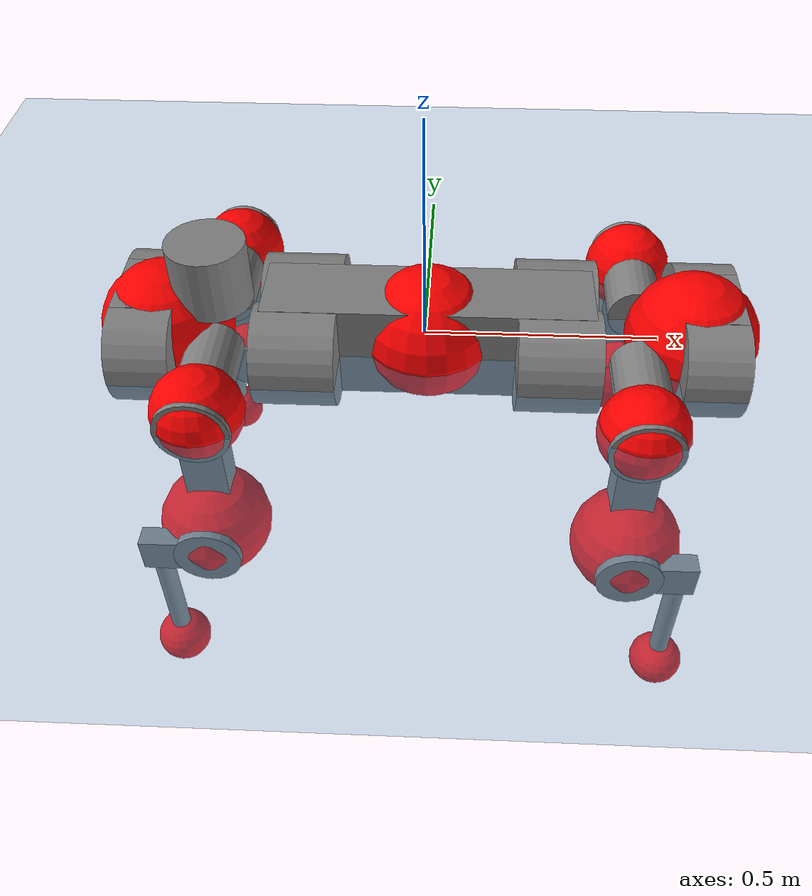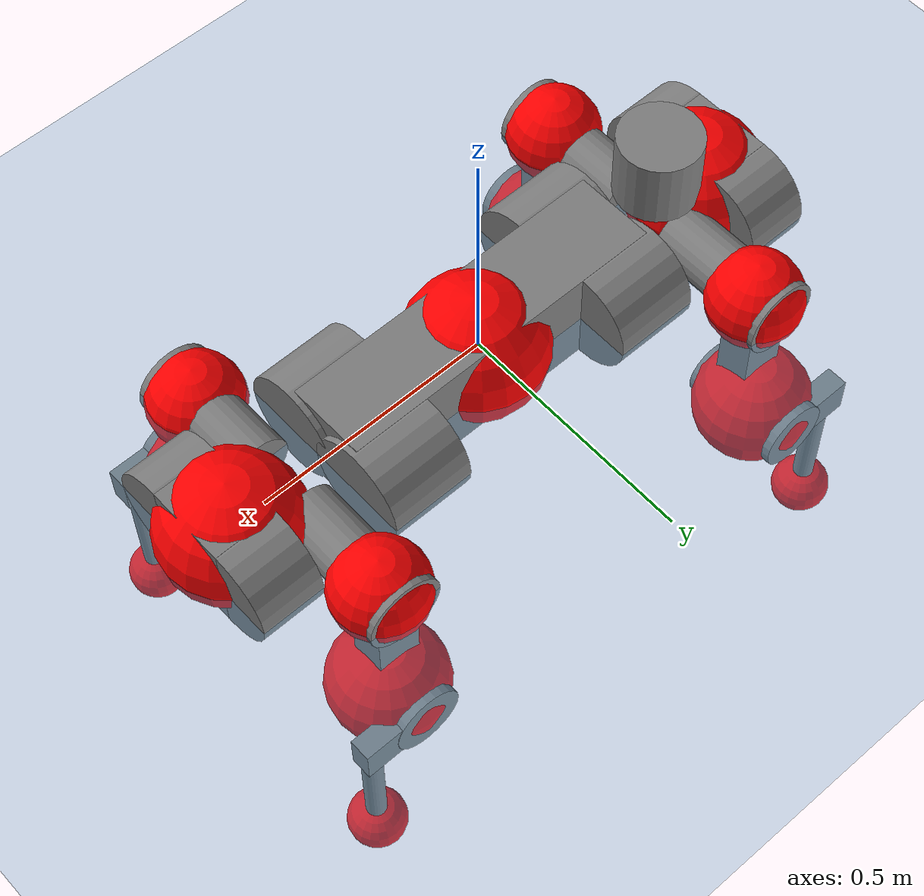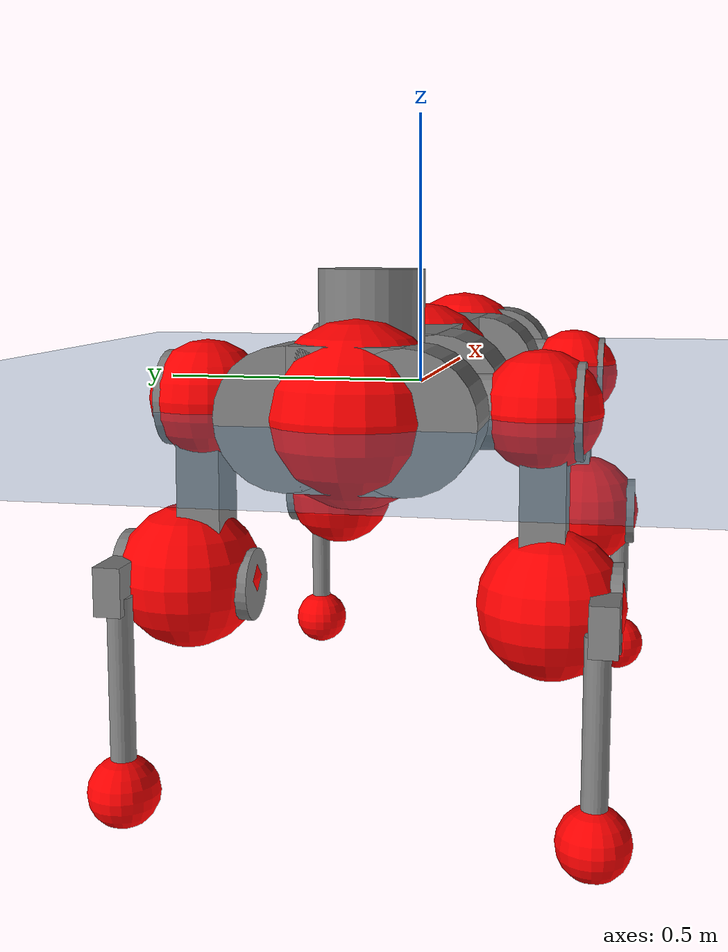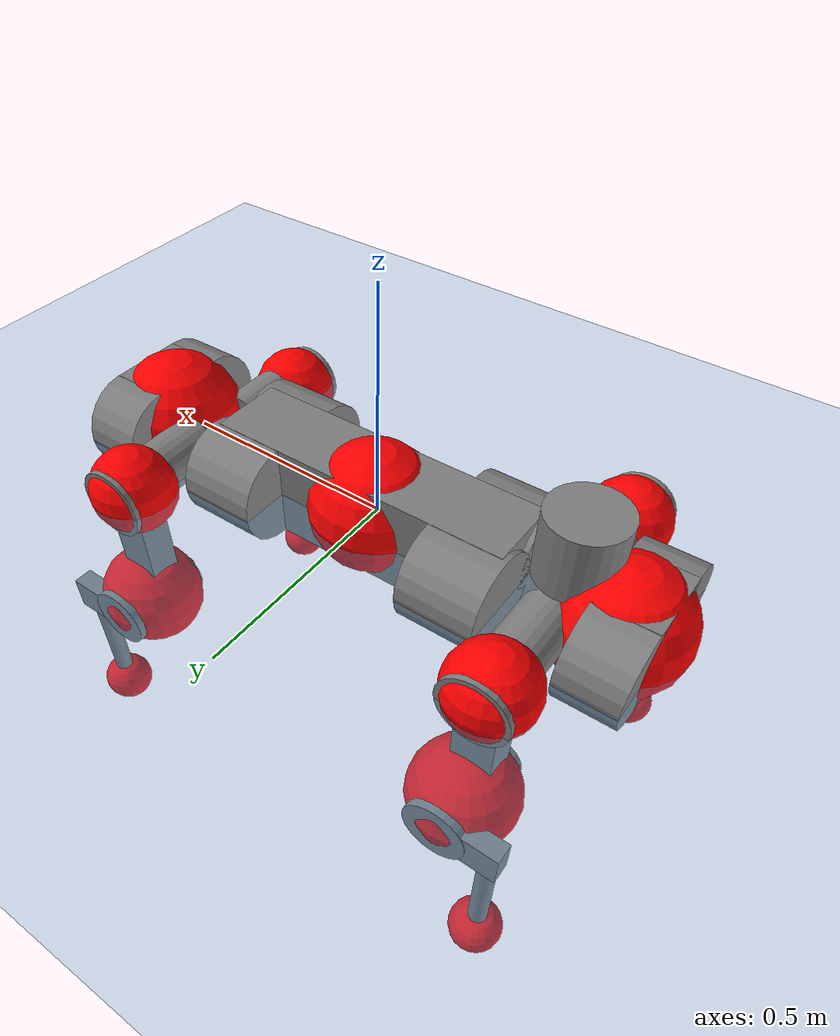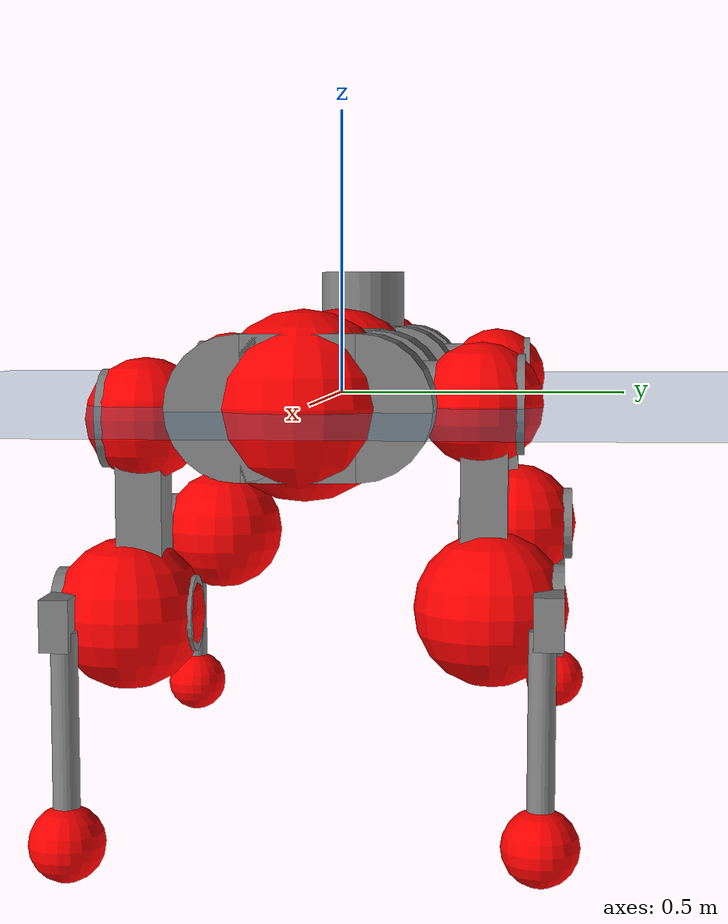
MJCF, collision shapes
<mujoco model="anymal_c">
  <compiler angle="radian" assetdir="assets" balanceinertia="true" inertiafromgeom="false"/>

  <option timestep="0.005" density="1.2" viscosity="2e-05"/>

  <size nkey="1"/>

  <visual>
    <quality shadowsize="8192"/>
    <map shadowclip="0.5"/>
  </visual>

  <default>
    <default class="/">
      <material specular="0" shininess="0.25"/>
      <geom contype="0" conaffinity="0" group="1" solref="-1000 -80"/>
      <site size="0.01 0.005 0.005" group="5"/>
      <general forcelimited="true" forcerange="-80 80" biastype="affine" gainprm="80" biasprm="0 -80 -2"/>
      <default class="anymal_c">
        <joint armature="0.01" damping="0.01" frictionloss="0.1"/>
        <default class="visual">
          <geom type="mesh" group="2"/>
          <default class="visual_zflip"/>
        </default>
        <default class="collision">
          <geom type="cylinder" group="3"/>
          <default class="foot">
            <geom size="0.03 0 0" type="sphere" condim="6" priority="1" friction="0.8 0.02 0.01" solimp="0.015 1 0.03"/>
          </default>
        </default>
      </default>
      <default class="reward_collision_sphere">
        <geom group="5" rgba="1 0 0 1"/>
      </default>
    </default>
  </default>

  <asset>
    <texture type="skybox" colorspace="auto" name="//unnamed_texture_0" builtin="gradient" rgb1="0.95 0.95 0.95" rgb2="0.95 0.95 0.95" width="100" height="600"/>
    <texture type="2d" colorspace="auto" name="texplane" builtin="checker" rgb1="0.345 0.575 0.748" rgb2="0.345 0.575 0.748" markrgb="1 1 1" width="512" height="512"/>
    <texture type="2d" colorspace="linear" name="base" file="base.png"/>
    <texture type="2d" colorspace="linear" name="top_shell" file="top_shell.png"/>
    <texture type="2d" colorspace="linear" name="bottom_shell" file="bottom_shell.png"/>
    <texture type="2d" colorspace="linear" name="remote" file="remote.png"/>
    <texture type="2d" colorspace="linear" name="hatch" file="hatch.png"/>
    <texture type="2d" colorspace="linear" name="handle" file="handle.png"/>
    <texture type="2d" colorspace="linear" name="face" file="face.png"/>
    <texture type="2d" colorspace="linear" name="battery" file="battery.png"/>
    <texture type="2d" colorspace="linear" name="lidar_cage" file="lidar_cage.png"/>
    <texture type="2d" colorspace="linear" name="depth_camera" file="depth_camera.png"/>
    <texture type="2d" colorspace="linear" name="wide_angle_camera" file="wide_angle_camera.png"/>
    <texture type="2d" colorspace="linear" name="lidar" file="lidar.png"/>
    <texture type="2d" colorspace="linear" name="drive" file="drive.png"/>
    <texture type="2d" colorspace="linear" name="hip_l" file="hip_l.png"/>
    <texture type="2d" colorspace="linear" name="shank_l" file="shank_l.png"/>
    <texture type="2d" colorspace="linear" name="foot" file="foot.png"/>
    <texture type="2d" colorspace="linear" name="thigh" file="thigh.png"/>
    <texture type="2d" colorspace="linear" name="shank_r" file="shank_r.png"/>
    <texture type="2d" colorspace="linear" name="hip_r" file="hip_r.png"/>
    <material name="MatPlane" class="/" texture="texplane" texuniform="true" texrepeat="2 2" specular="0.9" shininess="0.5"/>
    <material name="black_plastic" class="/" rgba="0.007 0.007 0.007 1"/>
    <material name="green" class="/" rgba="0.052 0.178 0.033 1"/>
    <material name="red" class="/" rgba="0.178 0.006 0.005 1"/>
    <material name="yellow" class="/" rgba="0.178 0.119 0.006 1"/>
    <material name="lwl" class="/" rgba="0.8 0.8 0.8 1"/>
    <material name="base" class="/" texture="base"/>
    <material name="top_shell" class="/" texture="top_shell"/>
    <material name="bottom_shell" class="/" texture="bottom_shell"/>
    <material name="hip_l" class="/" texture="hip_l"/>
    <material name="thigh" class="/" texture="thigh"/>
    <material name="shank_l" class="/" texture="shank_l"/>
    <material name="foot" class="/" texture="foot"/>
    <material name="hip_r" class="/" texture="hip_r"/>
    <material name="shank" class="/" texture="shank_r"/>
    <material name="hatch" class="/" texture="hatch"/>
    <material name="remote" class="/" texture="remote"/>
    <material name="handle" class="/" texture="handle"/>
    <material name="face" class="/" texture="face"/>
    <material name="depth_camera" class="/" texture="depth_camera"/>
    <material name="wide_angle_camera" class="/" texture="wide_angle_camera"/>
    <material name="battery" class="/" texture="battery"/>
    <material name="lidar_cage" class="/" texture="lidar_cage"/>
    <material name="lidar" class="/" texture="lidar"/>
    <material name="drive" class="/" texture="drive"/>
    <mesh name="base_0" class="/" file="base_0.obj"/>
    <mesh name="base_1" class="/" file="base_1.obj"/>
    <mesh name="base_2" class="/" file="base_2.obj"/>
    <mesh name="base_3" class="/" file="base_3.obj"/>
    <mesh name="base_4" class="/" file="base_4.obj"/>
    <mesh name="base_5" class="/" file="base_5.obj"/>
    <mesh name="top_shell" class="/" file="top_shell.obj"/>
    <mesh name="bottom_shell" class="/" file="bottom_shell.obj"/>
    <mesh name="remote" class="/" file="remote.obj"/>
    <mesh name="handle" class="/" file="handle.obj"/>
    <mesh name="face" class="/" file="face.obj"/>
    <mesh name="wide_angle_camera" class="/" file="wide_angle_camera.obj"/>
    <mesh name="depth_camera" class="/" file="depth_camera.obj"/>
    <mesh name="battery" class="/" file="battery.obj"/>
    <mesh name="lidar_cage" class="/" file="lidar_cage.obj"/>
    <mesh name="lidar" class="/" file="lidar.obj"/>
    <mesh name="drive" class="/" file="drive.obj"/>
    <mesh name="hip_l" class="/" file="hip_l.obj"/>
    <mesh name="thigh" class="/" file="thigh.obj"/>
    <mesh name="shank_l" class="/" file="shank_l.obj"/>
    <mesh name="foot" class="/" file="foot.obj"/>
    <mesh name="hip_r" class="/" file="hip_r.obj"/>
    <mesh name="hatch" class="/" file="hatch.obj"/>
    <mesh name="shank_r" class="/" file="shank_r.obj"/>
  </asset>

  <worldbody>
    <geom name="floor" class="/" size="100 100 0.125" type="plane" group="0" material="MatPlane"/>
    <light name="toplight_shadow" class="/" pos="0 0 5" dir="0.0990148 0.0990148 -0.990148" type="directional" ambient="0.04 0.04 0.04" diffuse="0.55 0.55 0.55" specular="0.12 0.12 0.12"/>
    <light name="toplight_fill" class="/" pos="0 0 5" dir="0.0990148 0.0990148 -0.990148" type="directional" castshadow="false" ambient="0.04 0.04 0.04" diffuse="0.3 0.3 0.3" specular="0.08 0.08 0.08"/>
    <body name="trunk" childclass="anymal_c" pos="0.00843166 -0.000815427 0.00585627" quat="0.999993 0.00256244 0.00190211 0.00188848">
      <inertial pos="0.00916689 -0.00636101 0.0517331" quat="0.482766 0.535066 0.471419 0.508336" mass="29.2136" diaginertia="1.50284 1.84745 0.235834"/>
      <joint name="//unnamed_joint_0" type="free" armature="0" damping="0" frictionloss="0"/>
      <geom name="//unnamed_geom_1" class="visual" material="green" mesh="base_0"/>
      <geom name="//unnamed_geom_2" class="visual" material="yellow" mesh="base_1"/>
      <geom name="//unnamed_geom_3" class="visual" material="red" mesh="base_2"/>
      <geom name="//unnamed_geom_4" class="visual" material="black_plastic" mesh="base_3"/>
      <geom name="//unnamed_geom_5" class="visual" material="lwl" mesh="base_4"/>
      <geom name="//unnamed_geom_6" class="visual" material="base" mesh="base_5"/>
      <geom name="trunk_1" class="collision" size="0.34608 0.0835367 0.107404" type="box"/>
      <geom name="trunk_2" class="collision" size="0.107404 0.0865201" pos="0.272046 0.08788 0" quat="0.707107 0 0.707107 0"/>
      <geom name="trunk_3" class="collision" size="0.107404 0.0865201" pos="-0.272046 0.08788 0" quat="0.707107 0 0.707107 0"/>
      <geom name="trunk_4" class="collision" size="0.107404 0.0865201" pos="0.272046 -0.08788 0" quat="0.707107 0 0.707107 0"/>
      <geom name="trunk_5" class="collision" size="0.107404 0.0865201" pos="-0.272046 -0.08788 0" quat="0.707107 0 0.707107 0"/>
      <geom name="//unnamed_geom_12" class="visual" material="top_shell" mesh="top_shell"/>
      <geom name="//unnamed_geom_13" class="visual" material="bottom_shell" mesh="bottom_shell"/>
      <geom name="//unnamed_geom_14" class="visual" material="remote" mesh="remote"/>
      <geom name="//unnamed_geom_15" class="visual" material="handle" mesh="handle"/>
      <geom name="//unnamed_geom_16" class="visual" pos="0.51845 0 0" quat="1 0 0 0" material="face" mesh="face"/>
      <geom name="trunk_6" class="collision" size="0.0656359 0.0835367 0.107404" pos="0.587243 0 0" type="box"/>
      <geom name="//unnamed_geom_18" class="collision" size="0.107404 0.0656359" pos="0.587243 0.08788 0" quat="0.707107 0 0.707107 0"/>
      <geom name="//unnamed_geom_19" class="collision" size="0.107404 0.0656359" pos="0.587243 -0.08788 0" quat="0.707107 0 0.707107 0"/>
      <geom name="//unnamed_geom_20" class="visual" pos="0.577417 0 -0.0300147" quat="0.965926 0 0.258819 0" material="depth_camera" mesh="depth_camera"/>
      <geom name="//unnamed_geom_21" class="visual" pos="0.641652 0 0.0160767" material="wide_angle_camera" mesh="wide_angle_camera"/>
      <geom name="//unnamed_geom_22" class="visual_zflip" pos="-0.51845 0 0" quat="0 0 0 1" material="face" mesh="face"/>
      <geom name="trunk_7" class="collision" size="0.0656359 0.0835367 0.107404" pos="-0.587243 0 0" quat="0 0 0 1" type="box"/>
      <geom name="//unnamed_geom_24" class="collision" size="0.107404 0.0656359" pos="-0.587243 -0.08788 0" quat="0 -0.707107 0 0.707107"/>
      <geom name="//unnamed_geom_25" class="collision" size="0.107404 0.0656359" pos="-0.587243 0.08788 0" quat="0 -0.707107 0 0.707107"/>
      <geom name="//unnamed_geom_26" class="visual" pos="-0.577417 0 -0.0300147" quat="0 -0.258819 0 0.965926" material="depth_camera" mesh="depth_camera"/>
      <geom name="//unnamed_geom_27" class="visual_zflip" pos="-0.641652 0 0.0160767" quat="0 0 0 1" material="wide_angle_camera" mesh="wide_angle_camera"/>
      <geom name="//unnamed_geom_28" class="visual" material="battery" mesh="battery"/>
      <geom name="//unnamed_geom_29" class="visual" pos="0 0.0960436 0.0325418" quat="0.683013 -0.183013 0.183013 0.683013" material="depth_camera" mesh="depth_camera"/>
      <geom name="//unnamed_geom_30" class="visual" pos="0 -0.0960436 0.0325418" quat="0.683013 0.183013 0.183013 -0.683013" material="depth_camera" mesh="depth_camera"/>
      <geom name="//unnamed_geom_31" class="visual" pos="-0.455286 0 0.0789338" quat="1 0 0 0" material="lidar_cage" mesh="lidar_cage"/>
      <geom name="trunk_8" class="collision" size="0.0835367 0.0716028" pos="-0.455286 0 0.14337"/>
      <geom name="//unnamed_geom_33" class="visual" pos="-0.455286 1.82436e-06 0.152713" quat="0.707107 0 0 -0.707107" material="lidar" mesh="lidar"/>
      <geom name="//unnamed_geom_34" class="visual" pos="0.37511 0.1305 3.13087e-09" quat="0.258819 0.965926 0 0" material="drive" mesh="drive"/>
      <geom name="//unnamed_geom_35" class="visual" pos="0.37511 -0.1305 -3.13087e-09" quat="0.258819 -0.965926 0 0" material="drive" mesh="drive"/>
      <geom name="//unnamed_geom_36" class="visual" pos="-0.37511 0.1305 -3.13087e-09" quat="0 0 0.965926 -0.258819" material="drive" mesh="drive"/>
      <geom name="//unnamed_geom_37" class="visual" pos="-0.37511 -0.1305 3.13087e-09" quat="0 0 -0.965926 -0.258819" material="drive" mesh="drive"/>
      <geom name="//unnamed_geom_38" class="visual" pos="0.145091 0 0.0783969" quat="1 0 0 0" material="hatch" mesh="hatch"/>
      <geom name="//unnamed_geom_39" class="reward_collision_sphere" size="0.143206"/>
      <geom name="//unnamed_geom_40" class="reward_collision_sphere" size="0.143206" pos="0.562853 0 0"/>
      <geom name="//unnamed_geom_41" class="reward_collision_sphere" size="0.143206" pos="-0.562853 0 0"/>
      <site name="imu" pos="0.278909 0.0788198 0.0697224" size="0.0119338"/>
      <camera name="track" pos="0 -2.51086 0" quat="0.707107 0.707107 0 0" mode="trackcom"/>
      <camera name="ego_camera" pos="0.562853 0 -0.0429572" quat="-0.5 -0.5 0.5 0.5"/>
      <body name="LF_HIP" pos="0.376207 0.130217 0.00464844" quat="0.264091 0.96449 -0.00352971 -0.00129036">
        <inertial pos="0.0769005 -0.0184677 -0.00618802" quat="-0.139009 0.67951 -0.148922 0.704815" mass="4.01645" diaginertia="0.0153036 0.0132796 0.00370247"/>
        <joint name="LF_HAA" pos="0 0 0" axis="0.99949 0.0259731 0.0185807" range="-0.951292 0.453036" armature="0.00617256" damping="0.0150057" frictionloss="0.125072"/>
        <geom name="//unnamed_geom_42" class="visual" pos="0 0.000184175 -3.02505e-05" quat="0.258819 -0.965926 0 0" material="hip_l" mesh="hip_l"/>
        <geom name="//unnamed_geom_43" class="visual" pos="0.074922 -0.0907806 -0.0510697" quat="0.183013 -0.683013 0.683013 0.183013" material="drive" mesh="drive"/>
        <geom name="//unnamed_geom_44" class="collision" size="0.059669 0.0835367" pos="0.074922 -0.0150147 -0.00741549" quat="-0.353553 -0.612372 0.612372 -0.353553"/>
        <body name="LF_THIGH" pos="0.0747166 -0.0891322 -0.0430503" quat="0.183001 -0.682538 0.683382 0.183413">
          <inertial pos="0.0378777 0.01176 -0.250141" quat="0.993096 -0.0148018 -0.0716958 0.0916565" mass="5.35224" diaginertia="0.0919324 0.101511 0.00591049"/>
          <joint name="LF_HFE" pos="0 0 0" axis="0.999969 0.00259973 -0.00744056" range="-3.13521 2.87895" armature="0.0158829" damping="0.0737758" frictionloss="0.118405"/>
          <geom name="//unnamed_geom_45" class="visual" pos="-9.239e-05 -1.45585e-07 0" quat="0.707107 0 0 -0.707107" material="thigh" mesh="thigh"/>
          <geom name="//unnamed_geom_46" class="collision" size="0.0775698 0.0477352" pos="0.0500314 0 0" quat="0.5 0.5 -0.5 -0.5"/>
          <geom name="//unnamed_geom_47" class="collision" size="0.0447518 0.0358014 0.168641" pos="0.0375235 0 -0.151761" quat="0.707107 0 0 -0.707107" type="box"/>
          <geom name="//unnamed_geom_48" class="visual" pos="0.125454 0 -0.30607" quat="1 0 0 0" material="drive" mesh="drive"/>
          <geom name="//unnamed_geom_49" class="collision" size="0.059669 0.0835367" pos="0.0378988 0 -0.30607" quat="0.707107 0 0.707107 0"/>
          <geom name="//unnamed_geom_50" class="reward_collision_sphere" size="0.0954705" pos="0.0312696 0 0"/>
          <body name="LF_SHANK" pos="0.111642 -0.0124821 -0.314156" quat="1 -0.000342219 0.000209404 9.52681e-05">
            <inertial pos="0.00996405 -0.0704405 -0.0945932" quat="0.992947 -0.115999 -0.00639913 -0.0236496" mass="0.868566" diaginertia="0.0284096 0.0300663 0.00164665"/>
            <joint name="LF_KFE" pos="0 0 0" axis="0.999919 0.00162287 0.0126484" stiffness="0.064986" range="-3.29701 3.35626" armature="0.0124486" damping="0.0180798" frictionloss="0.122409"/>
            <geom name="//unnamed_geom_51" class="visual" pos="-3.01264e-05 -0.000160635 0" quat="0.707107 0 0 -0.707107" material="shank_l" mesh="shank_l"/>
            <geom name="LF_kfe_act" class="collision" size="0.0716028 0.0238676" pos="0.0250157 0 0" quat="0.5 0.5 -0.5 -0.5"/>
            <geom name="//unnamed_geom_53" class="collision" size="0.0686182 0.0402766 0.0226742" pos="0.0250157 -0.0721859 0" quat="0.5 0.5 -0.5 -0.5" type="box"/>
            <geom name="//unnamed_geom_54" class="visual" pos="0.0163227 -0.110467 -0.362956" quat="0.382683 0 0 -0.92388" material="foot" mesh="foot"/>
            <geom name="LF_calf" class="collision" size="0.0208842 0.168567" pos="0.0163227 -0.110415 -0.181478" quat="0.707107 0 0 -0.707107"/>
            <geom name="LF_foot" class="foot" size="0.0521524" pos="0.0163227 -0.110415 -0.338793" quat="0.707107 0 0 -0.707107"/>
            <geom name="//unnamed_geom_57" class="reward_collision_sphere" size="0.119338" pos="-0.0625392 0 0"/>
            <geom name="//unnamed_geom_58" class="reward_collision_sphere" size="0.059669" pos="0.0163227 -0.110415 -0.338793"/>
            <site name="LF_foot" class="foot" pos="0.0163227 -0.110415 -0.338793" quat="0.707107 0 0 -0.707107" size="0.0119338"/>
          </body>
        </body>
      </body>
      <body name="RF_HIP" pos="0.369559 -0.136517 -0.0120999" quat="0.258819 -0.965926 -9.73124e-08 4.34177e-07">
        <inertial pos="0.0737103 0.0271973 -0.00785954" quat="0.0926697 0.711145 0.119678 0.686559" mass="3.94118" diaginertia="0.0163428 0.0122308 0.0039083"/>
        <joint name="RF_HAA" pos="0 0 0" axis="0.999995 0.00266032 0.00174076" stiffness="0.00097078" range="-0.664737 0.727738" armature="0.0119002" damping="0.015421" frictionloss="0.0972651"/>
        <geom name="//unnamed_geom_59" class="visual" pos="0 -0.000184173 -3.02505e-05" quat="0.258819 0.965926 0 0" material="hip_r" mesh="hip_r"/>
        <geom name="//unnamed_geom_60" class="visual" pos="0.074922 0.0907806 -0.0510697" quat="0.183013 0.683013 0.683013 -0.183013" material="drive" mesh="drive"/>
        <geom name="//unnamed_geom_61" class="collision" size="0.059669 0.0835367" pos="0.074922 0.0150147 -0.00741549" quat="-0.353553 0.612372 0.612372 0.353553"/>
        <body name="RF_THIGH" pos="0.0695028 0.0895815 -0.0354723" quat="0.181957 0.683775 0.682297 -0.183883">
          <inertial pos="0.037791 -0.000483201 -0.251459" quat="0.988564 -0.0377492 -0.0451701 0.138835" mass="4.24621" diaginertia="0.0845866 0.0792447 0.00508093"/>
          <joint name="RF_HFE" pos="0 0 0" axis="0.99983 -0.00201983 -0.0183127" stiffness="0.0160659" range="-2.89827 2.94923" armature="0.0171823" damping="0.0105992" frictionloss="0.107027"/>
          <geom name="//unnamed_geom_62" class="visual" pos="-9.239e-05 -1.45585e-07 0" quat="0.707107 0 0 -0.707107" material="thigh" mesh="thigh"/>
          <geom name="//unnamed_geom_63" class="collision" size="0.0775698 0.0477352" pos="0.0500314 0 0" quat="0.5 0.5 0.5 0.5"/>
          <geom name="//unnamed_geom_64" class="collision" size="0.0447518 0.0358014 0.168641" pos="0.0375235 0 -0.151761" quat="0.707107 0 0 0.707107" type="box"/>
          <geom name="//unnamed_geom_65" class="visual" pos="0.125454 0 -0.30607" quat="1 0 0 0" material="drive" mesh="drive"/>
          <geom name="//unnamed_geom_66" class="collision" size="0.059669 0.0835367" pos="0.0378988 0 -0.30607" quat="0.707107 0 0.707107 0"/>
          <geom name="//unnamed_geom_67" class="reward_collision_sphere" size="0.0954705" pos="0.0312696 0 0"/>
          <body name="RF_SHANK" pos="0.124397 0.0002672 -0.306152" quat="1 -3.9421e-05 -7.46435e-06 -3.27639e-05">
            <inertial pos="0.00529949 0.0782087 -0.100634" quat="0.993282 0.114079 -0.0193927 -8.54294e-05" mass="1.31136" diaginertia="0.0344265 0.0281574 0.00214661"/>
            <joint name="RF_KFE" pos="0 0 0" axis="0.999856 0.0084418 -0.0147441" range="-3.10302 3.26302" armature="0.00668235" damping="0.00582565" frictionloss="0.121782"/>
            <geom name="//unnamed_geom_68" class="visual" pos="-3.01262e-05 0.000160635 0" quat="0.707107 0 0 0.707107" material="shank" mesh="shank_r"/>
            <geom name="RF_kfe_act" class="collision" size="0.0716028 0.0238676" pos="0.0250157 0 0" quat="0.5 0.5 0.5 0.5"/>
            <geom name="//unnamed_geom_70" class="collision" size="0.0686182 0.0402766 0.0226742" pos="0.0250157 0.0721859 0" quat="0.5 0.5 0.5 0.5" type="box"/>
            <geom name="//unnamed_geom_71" class="visual" pos="0.0163227 0.110467 -0.362956" quat="0.382683 0 0 0.92388" material="foot" mesh="foot"/>
            <geom name="RF_calf" class="collision" size="0.0208842 0.168567" pos="0.0163227 0.110415 -0.181478" quat="0.707107 0 0 0.707107"/>
            <geom name="RF_foot" class="foot" size="0.0308683" pos="0.0163227 0.110415 -0.338793" quat="0.707107 0 0 0.707107"/>
            <geom name="//unnamed_geom_74" class="reward_collision_sphere" size="0.119338" pos="-0.0625392 0 0"/>
            <geom name="//unnamed_geom_75" class="reward_collision_sphere" size="0.059669" pos="0.0163227 0.110415 -0.338793"/>
            <site name="RF_foot" class="foot" pos="0.0163227 0.110415 -0.338793" quat="0.707107 0 0 0.707107" size="0.0119338"/>
          </body>
        </body>
      </body>
      <body name="LH_HIP" pos="-0.373572 0.136087 0.0116934" quat="-0.000649606 0.00052585 0.965942 -0.258757">
        <inertial pos="0.0724728 0.0188852 0.00254693" quat="0.132151 0.679716 0.127072 0.710194" mass="4.06978" diaginertia="0.0156389 0.0169502 0.00474121"/>
        <joint name="LH_HAA" pos="0 0 0" axis="0.999998 0.00210996 0.000112904" range="-0.755844 0.493072" armature="0.0118089" damping="0.0437455" frictionloss="0.0517575"/>
        <geom name="//unnamed_geom_76" class="visual" pos="0 -0.000184173 -3.02505e-05" quat="-0.258819 -0.965926 0 0" material="hip_r" mesh="hip_r"/>
        <geom name="//unnamed_geom_77" class="visual" pos="0.074922 0.0907806 -0.0510697" quat="0.183013 0.683013 0.683013 -0.183013" material="drive" mesh="drive"/>
        <geom name="//unnamed_geom_78" class="collision" size="0.059669 0.0835367" pos="0.074922 0.0150147 -0.00741549" quat="-0.353553 0.612372 0.612372 0.353553"/>
        <body name="LH_THIGH" pos="0.0751527 0.0936295 -0.0455724" quat="0.183142 0.682715 0.683205 -0.183277">
          <inertial pos="0.049555 -0.00115005 -0.250251" quat="0.991665 -0.0158614 -0.0372944 0.122307" mass="4.99659" diaginertia="0.100286 0.0889375 0.00643225"/>
          <joint name="LH_HFE" pos="0 0 0" axis="0.998495 -0.00409047 0.0546887" stiffness="0.0173292" range="-2.91476 3.17214" armature="0.00947306" damping="0" frictionloss="0.111192"/>
          <geom name="//unnamed_geom_79" class="visual" pos="-9.239e-05 -1.45585e-07 0" quat="0.707107 0 0 -0.707107" material="thigh" mesh="thigh"/>
          <geom name="//unnamed_geom_80" class="collision" size="0.0775698 0.0477352" pos="0.0500314 0 0" quat="0.5 0.5 -0.5 -0.5"/>
          <geom name="//unnamed_geom_81" class="collision" size="0.0447518 0.0358014 0.168641" pos="0.0375235 0 -0.151761" quat="0.707107 0 0 -0.707107" type="box"/>
          <geom name="//unnamed_geom_82" class="visual" pos="0.125454 0 -0.30607" quat="1 0 0 0" material="drive" mesh="drive"/>
          <geom name="//unnamed_geom_83" class="collision" size="0.059669 0.0835367" pos="0.0378988 0 -0.30607" quat="0.707107 0 0.707107 0"/>
          <geom name="//unnamed_geom_84" class="reward_collision_sphere" size="0.0954705" pos="0.0312696 0 0"/>
          <body name="LH_SHANK" pos="0.132504 -0.00490046 -0.297174" quat="1 -0.000162884 0.00038772 -0.000213815">
            <inertial pos="0.000241054 0.0839203 -0.0944218" quat="0.9912 0.111103 -0.0228521 0.0682431" mass="1.12958" diaginertia="0.0311391 0.0276326 0.00170287"/>
            <joint name="LH_KFE" pos="0 0 0" axis="0.999548 -0.0276927 -0.0117161" stiffness="0.0684655" range="-3.21444 3.13188" armature="0.0109365" damping="0.00761134" frictionloss="0.0787453"/>
            <geom name="//unnamed_geom_85" class="visual" pos="-3.01262e-05 0.000160635 0" quat="-0.707107 0 0 -0.707107" material="shank" mesh="shank_r"/>
            <geom name="LH_kfe_act" class="collision" size="0.0716028 0.0238676" pos="0.0250157 0 0" quat="0.5 0.5 -0.5 -0.5"/>
            <geom name="//unnamed_geom_87" class="collision" size="0.0686182 0.0402766 0.0226742" pos="0.0250157 0.0721859 0" quat="0.5 0.5 -0.5 -0.5" type="box"/>
            <geom name="//unnamed_geom_88" class="visual" pos="0.0163227 0.110467 -0.362956" quat="-0.382683 0 0 -0.92388" material="foot" mesh="foot"/>
            <geom name="LH_calf" class="collision" size="0.0208842 0.168567" pos="0.0163227 0.110415 -0.181478" quat="0.707107 0 0 -0.707107"/>
            <geom name="LH_foot" class="foot" size="0.0301369" pos="0.0163227 0.110415 -0.338793" quat="0.707107 0 0 -0.707107"/>
            <geom name="//unnamed_geom_91" class="reward_collision_sphere" size="0.119338" pos="-0.0625392 0 0"/>
            <geom name="//unnamed_geom_92" class="reward_collision_sphere" size="0.059669" pos="0.0163227 0.110415 -0.338793"/>
            <site name="LH_foot" class="foot" pos="0.0163227 0.110415 -0.338793" quat="0.707107 0 0 -0.707107" size="0.0119338"/>
          </body>
        </body>
      </body>
      <body name="RH_HIP" pos="-0.375238 -0.127447 -0.00367757" quat="-0.000323694 -0.00164971 -0.966254 -0.257587">
        <inertial pos="0.072079 -0.0303255 -0.000513596" quat="-0.129407 0.710776 -0.135416 0.678022" mass="5.15024" diaginertia="0.0211744 0.0181955 0.00549171"/>
        <joint name="RH_HAA" pos="0 0 0" axis="0.999847 -0.0150264 -0.00896568" stiffness="0.00678744" range="-0.80392 0.685472" armature="0.0154218" damping="0.0590817" frictionloss="0.0955212"/>
        <geom name="//unnamed_geom_93" class="visual" pos="0 0.000184175 -3.02505e-05" quat="-0.258819 0.965926 0 0" material="hip_l" mesh="hip_l"/>
        <geom name="//unnamed_geom_94" class="visual" pos="0.074922 -0.0907806 -0.0510697" quat="-0.183013 0.683013 -0.683013 -0.183013" material="drive" mesh="drive"/>
        <geom name="//unnamed_geom_95" class="collision" size="0.059669 0.0835367" pos="0.074922 -0.0150147 -0.00741549" quat="0.353553 0.612372 -0.612372 0.353553"/>
        <body name="RH_THIGH" pos="0.0733444 -0.0940045 -0.0570369" quat="-0.183522 0.682502 -0.683331 -0.183218">
          <inertial pos="0.0457933 -0.00843354 -0.263726" quat="0.993556 -0.00591126 -0.0796726 0.0803917" mass="6.59589" diaginertia="0.0973273 0.10492 0.00590069"/>
          <joint name="RH_HFE" pos="0 0 0" axis="0.999794 0.0182249 0.00892057" range="-2.89898 2.91569" armature="0.0121836" damping="0.00193529" frictionloss="0.179408"/>
          <geom name="//unnamed_geom_96" class="visual" pos="-9.239e-05 -1.45585e-07 0" quat="0.707107 0 0 -0.707107" material="thigh" mesh="thigh"/>
          <geom name="//unnamed_geom_97" class="collision" size="0.0775698 0.0477352" pos="0.0500314 0 0" quat="0.5 0.5 0.5 0.5"/>
          <geom name="//unnamed_geom_98" class="collision" size="0.0447518 0.0358014 0.168641" pos="0.0375235 0 -0.151761" quat="0.707107 0 0 0.707107" type="box"/>
          <geom name="//unnamed_geom_99" class="visual" pos="0.125454 0 -0.30607" quat="1 0 0 0" material="drive" mesh="drive"/>
          <geom name="//unnamed_geom_100" class="collision" size="0.059669 0.0835367" pos="0.0378988 0 -0.30607" quat="0.707107 0 0.707107 0"/>
          <geom name="//unnamed_geom_101" class="reward_collision_sphere" size="0.0954705" pos="0.0312696 0 0"/>
          <body name="RH_SHANK" pos="0.113126 -0.00169976 -0.307372" quat="1 -0.000516782 5.35077e-05 -0.000240526">
            <inertial pos="0.00301188 -0.0767795 -0.0880743" quat="0.992428 -0.120449 -0.0018354 -0.02399" mass="1.22133" diaginertia="0.0349873 0.0315844 0.00176731"/>
            <joint name="RH_KFE" pos="0 0 0" axis="0.999494 0.0162829 -0.0273076" stiffness="0.0318077" range="-3.1104 3.00528" armature="0.0148696" damping="0.0672546" frictionloss="0.11112"/>
            <geom name="//unnamed_geom_102" class="visual" pos="-3.01264e-05 -0.000160635 0" quat="0.707107 0 0 -0.707107" material="shank_l" mesh="shank_l"/>
            <geom name="RH_kfe_act" class="collision" size="0.0716028 0.0238676" pos="0.0250157 0 0" quat="0.5 0.5 0.5 0.5"/>
            <geom name="//unnamed_geom_104" class="collision" size="0.0686182 0.0402766 0.0226742" pos="0.0250157 -0.0721859 0" quat="0.5 0.5 0.5 0.5" type="box"/>
            <geom name="//unnamed_geom_105" class="visual" pos="0.0163227 -0.110467 -0.362956" quat="0.382683 0 0 -0.92388" material="foot" mesh="foot"/>
            <geom name="RH_calf" class="collision" size="0.0208842 0.168567" pos="0.0163227 -0.110415 -0.181478" quat="0.707107 0 0 0.707107"/>
            <geom name="RH_foot" class="foot" size="0.0379132" pos="0.0163227 -0.110415 -0.338793" quat="0.707107 0 0 0.707107"/>
            <geom name="//unnamed_geom_108" class="reward_collision_sphere" size="0.119338" pos="-0.0625392 0 0"/>
            <geom name="//unnamed_geom_109" class="reward_collision_sphere" size="0.059669" pos="0.0163227 -0.110415 -0.338793"/>
            <site name="RH_foot" class="foot" pos="0.0163227 -0.110415 -0.338793" quat="0.707107 0 0 0.707107" size="0.0119338"/>
          </body>
        </body>
      </body>
    </body>
  </worldbody>

  <contact>
    <pair class="/" geom1="floor" geom2="LF_foot" name="//unnamed_contact_0"/>
    <pair class="/" geom1="floor" geom2="RF_foot" name="//unnamed_contact_1"/>
    <pair class="/" geom1="floor" geom2="LH_foot" name="//unnamed_contact_2"/>
    <pair class="/" geom1="floor" geom2="RH_foot" name="//unnamed_contact_3"/>
  </contact>

  <actuator>
    <general name="LF_HAA" class="/" joint="LF_HAA" forcerange="-91.046 91.046" gainprm="104.09" biasprm="0 -104.09 -1.73452"/>
    <general name="LF_HFE" class="/" joint="LF_HFE" forcerange="-58.4024 58.4024" gainprm="104.09" biasprm="0 -104.09 -1.73452"/>
    <general name="LF_KFE" class="/" joint="LF_KFE" forcerange="-136.529 136.529" gainprm="104.09" biasprm="0 -104.09 -1.73452"/>
    <general name="RF_HAA" class="/" joint="RF_HAA" forcerange="-96.4433 96.4433" gainprm="104.09" biasprm="0 -104.09 -1.73452"/>
    <general name="RF_HFE" class="/" joint="RF_HFE" forcerange="-70.2705 70.2705" gainprm="104.09" biasprm="0 -104.09 -1.73452"/>
    <general name="RF_KFE" class="/" joint="RF_KFE" forcerange="-45.1708 45.1708" gainprm="104.09" biasprm="0 -104.09 -1.73452"/>
    <general name="LH_HAA" class="/" joint="LH_HAA" forcerange="-53.797 53.797" gainprm="104.09" biasprm="0 -104.09 -1.73452"/>
    <general name="LH_HFE" class="/" joint="LH_HFE" forcerange="-75.7211 75.7211" gainprm="104.09" biasprm="0 -104.09 -1.73452"/>
    <general name="LH_KFE" class="/" joint="LH_KFE" forcerange="-103.593 103.593" gainprm="104.09" biasprm="0 -104.09 -1.73452"/>
    <general name="RH_HAA" class="/" joint="RH_HAA" forcerange="-95.261 95.261" gainprm="104.09" biasprm="0 -104.09 -1.73452"/>
    <general name="RH_HFE" class="/" joint="RH_HFE" forcerange="-143.094 143.094" gainprm="104.09" biasprm="0 -104.09 -1.73452"/>
    <general name="RH_KFE" class="/" joint="RH_KFE" forcerange="-130.182 130.182" gainprm="104.09" biasprm="0 -104.09 -1.73452"/>
  </actuator>

  <sensor>
    <gyro site="imu" name="imu_angular_velocity"/>
    <velocimeter site="imu" name="imu_linear_velocity"/>
    <framelinvel objtype="site" objname="LF_foot" name="LF_foot_global_linear_velocity"/>
    <framelinvel objtype="site" objname="RF_foot" name="RF_foot_global_linear_velocity"/>
    <framelinvel objtype="site" objname="LH_foot" name="LH_foot_global_linear_velocity"/>
    <framelinvel objtype="site" objname="RH_foot" name="RH_foot_global_linear_velocity"/>
  </sensor>

  <keyframe>
    <key name="home" qpos="0 0 0.55 1 0 0 0 0 0.4 -0.8 0 -0.4 0.8 0 -0.4 0.8 0 0.4 -0.8"/>
  </keyframe>
</mujoco>
